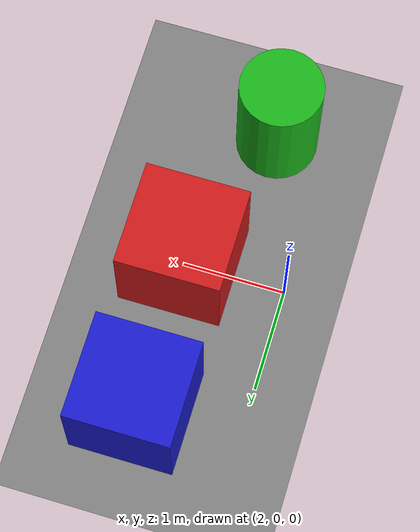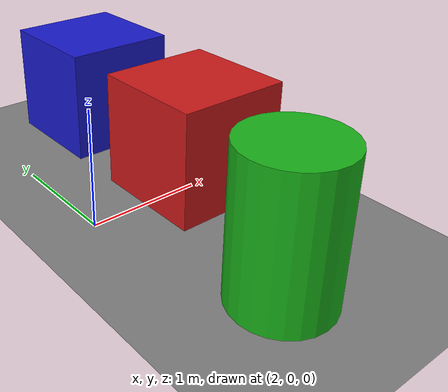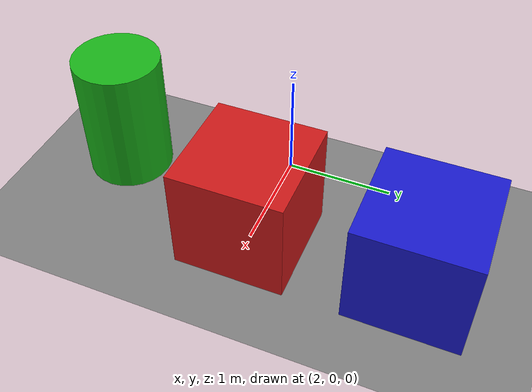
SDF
<?xml version="1.0"?>
<sdf version="1.10">
  <world name="empty_lab">
    <physics name="1ms" type="ode">
      <max_step_size>0.001</max_step_size>
      <real_time_factor>1.0</real_time_factor>
      <real_time_update_rate>1000</real_time_update_rate>
    </physics>
    <gravity>0 0 -9.8</gravity>
    <magnetic_field>6e-06 2.3e-05 -4.2e-05</magnetic_field>
    <atmosphere type="adiabatic"/>

    <plugin filename="gz-sim-physics-system" name="gz::sim::systems::Physics"/>
    <plugin filename="gz-sim-user-commands-system" name="gz::sim::systems::UserCommands"/>
    <plugin filename="gz-sim-scene-broadcaster-system" name="gz::sim::systems::SceneBroadcaster"/>
    <plugin filename="gz-sim-contact-system" name="gz::sim::systems::Contact"/>
    <plugin filename="gz-sim-imu-system" name="gz::sim::systems::Imu"/>
    <plugin filename="gz-sim-air-pressure-system" name="gz::sim::systems::AirPressure"/>
    <plugin filename="gz-sim-air-speed-system" name="gz::sim::systems::AirSpeed"/>
    <plugin filename="gz-sim-apply-link-wrench-system" name="gz::sim::systems::ApplyLinkWrench"/>
    <plugin filename="gz-sim-navsat-system" name="gz::sim::systems::NavSat"/>
    <plugin filename="gz-sim-magnetometer-system" name="gz::sim::systems::Magnetometer"/>
    <plugin filename="gz-sim-sensors-system" name="gz::sim::systems::Sensors">
      <render_engine>ogre2</render_engine>
      <background_color>0.6 0.7 0.85 1.0</background_color>
    </plugin>

    <!-- Invisible flat collision plane so physics-driven vehicles rest
         on the world; the lab visuals below carry only visuals. -->
    <model name="ground_collision_plane">
      <static>true</static>
      <pose>0 0 0 0 0 0</pose>
      <link name="link">
        <collision name="collision">
          <geometry><plane><normal>0 0 1</normal><size>500 500</size></plane></geometry>
          <surface>
            <friction><ode><mu>1.0</mu><mu2>1.0</mu2></ode></friction>
          </surface>
        </collision>
      </link>
    </model>

    <scene>
      <ambient>0.4 0.4 0.4 1</ambient>
      <background>0.6 0.7 0.85 1</background>
      <sky/>
    </scene>

    <light type="directional" name="sun">
      <pose>0 0 10 0 0 0</pose>
      <diffuse>1 1 1 1</diffuse>
      <specular>0.5 0.5 0.5 1</specular>
      <direction>-0.5 0.3 -1</direction>
      <cast_shadows>true</cast_shadows>
    </light>

    <model name="ground_plane">
      <static>true</static>
      <link name="link">
        <collision name="collision">
          <geometry>
            <plane>
              <normal>0 0 1</normal>
              <size>50 50</size>
            </plane>
          </geometry>
        </collision>
        <visual name="visual">
          <geometry>
            <plane>
              <normal>0 0 1</normal>
              <size>50 50</size>
            </plane>
          </geometry>
          <material>
            <ambient>0.3 0.3 0.3 1</ambient>
            <diffuse>0.5 0.5 0.5 1</diffuse>
          </material>
          <plugin filename="gz-sim-label-system" name="gz::sim::systems::Label">
            <label>10</label>
          </plugin>
        </visual>
      </link>
    </model>

    <model name="box_red">
      <static>true</static>
      <pose>3 0 0.5 0 0 0</pose>
      <link name="link">
        <visual name="visual">
          <geometry>
            <box><size>1 1 1</size></box>
          </geometry>
          <material>
            <ambient>0.6 0.1 0.1 1</ambient>
            <diffuse>0.8 0.1 0.1 1</diffuse>
          </material>
          <plugin filename="gz-sim-label-system" name="gz::sim::systems::Label">
            <label>20</label>
          </plugin>
        </visual>
        <collision name="collision">
          <geometry><box><size>1 1 1</size></box></geometry>
        </collision>
      </link>
    </model>

    <model name="box_blue">
      <static>true</static>
      <pose>3 1.5 0.5 0 0 0</pose>
      <link name="link">
        <visual name="visual">
          <geometry>
            <box><size>1 1 1</size></box>
          </geometry>
          <material>
            <ambient>0.1 0.1 0.6 1</ambient>
            <diffuse>0.1 0.1 0.8 1</diffuse>
          </material>
          <plugin filename="gz-sim-label-system" name="gz::sim::systems::Label">
            <label>30</label>
          </plugin>
        </visual>
        <collision name="collision">
          <geometry><box><size>1 1 1</size></box></geometry>
        </collision>
      </link>
    </model>

    <model name="cylinder_green">
      <static>true</static>
      <pose>2.5 -1.5 0.6 0 0 0</pose>
      <link name="link">
        <visual name="visual">
          <geometry>
            <cylinder><radius>0.4</radius><length>1.2</length></cylinder>
          </geometry>
          <material>
            <ambient>0.1 0.5 0.1 1</ambient>
            <diffuse>0.1 0.7 0.1 1</diffuse>
          </material>
          <plugin filename="gz-sim-label-system" name="gz::sim::systems::Label">
            <label>40</label>
          </plugin>
        </visual>
        <collision name="collision">
          <geometry><cylinder><radius>0.4</radius><length>1.2</length></cylinder></geometry>
        </collision>
      </link>
    </model>

    <spherical_coordinates>
      <surface_model>EARTH_WGS84</surface_model>
      <world_frame_orientation>ENU</world_frame_orientation>
      <latitude_deg>47.397971057728974</latitude_deg>
      <longitude_deg>8.546163739800146</longitude_deg>
      <elevation>0</elevation>
    </spherical_coordinates>
  </world>
</sdf>
